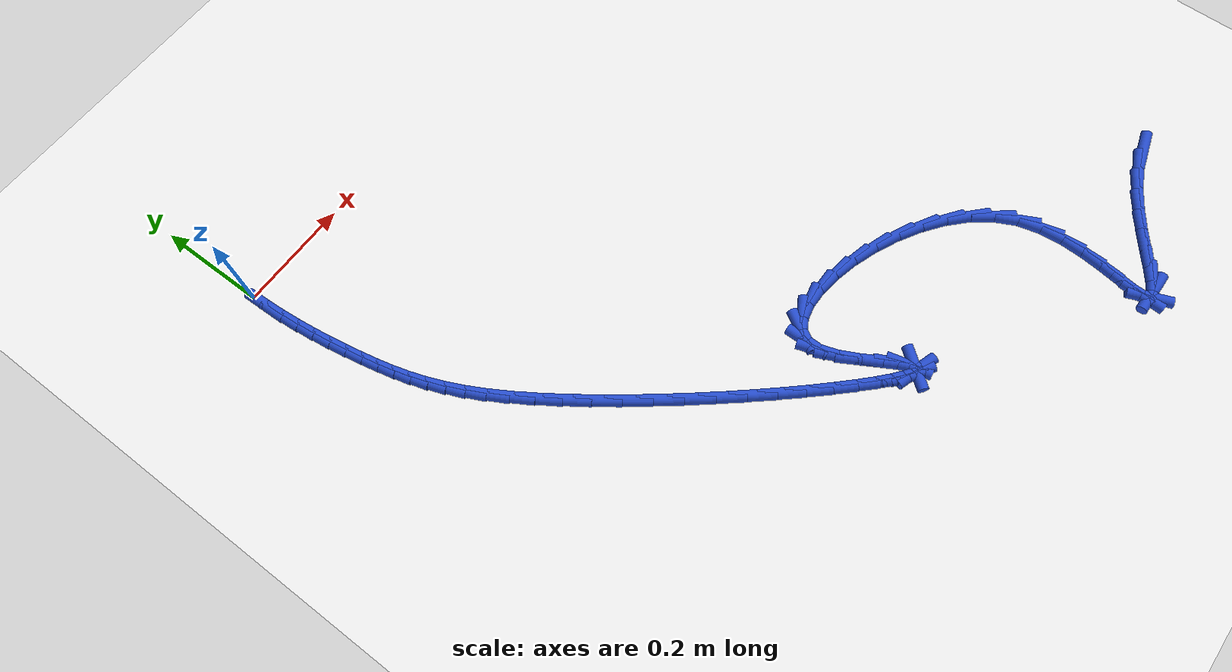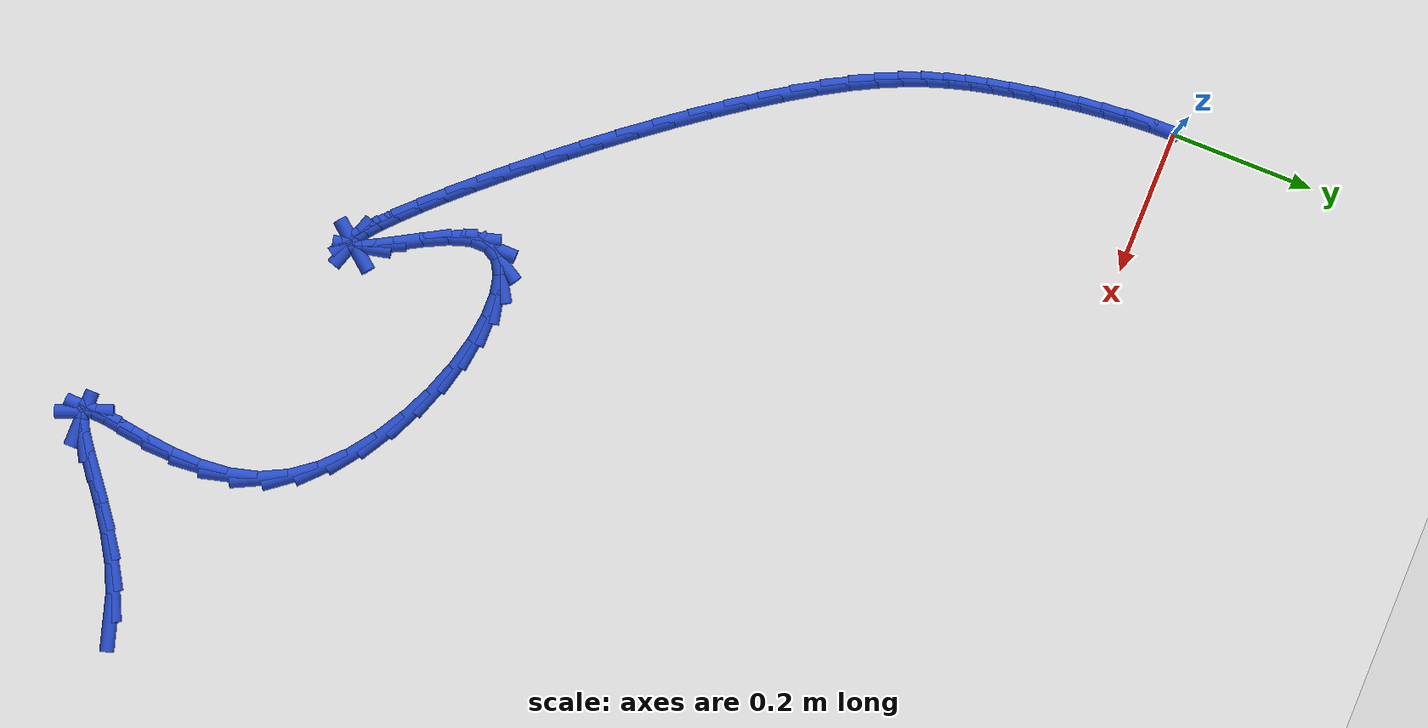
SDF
<sdf version="1.6">
 <world name="default">
  <model name="ground_plane">
   <static>1</static>
   <link name="link">
    <collision name="collision">
     <geometry><plane><normal>0 0 1</normal><size>100 100</size></plane></geometry>
     <surface><friction><ode><mu>100</mu><mu2>50</mu2></ode></friction></surface>
    </collision>
    <visual name="visual">
     <cast_shadows>0</cast_shadows>
     <geometry><plane><normal>0 0 1</normal><size>100 100</size></plane></geometry>
     <material>
      <script><uri>file://media/materials/scripts/gazebo.material</uri><name>Gazebo/WhiteGlow</name></script>
     </material>
    </visual>
   </link>
  </model>
  <model name="line">
   <link name="link_210">
    <pose>1.1494862340165375 -1.0933933401356342 0.01 0 1.57 0.2809379320940617</pose>
    <collision name="collision">
     <geometry><cylinder><radius>0.01</radius><length>0.08</length></cylinder></geometry>
    </collision>
    <visual name="visual">
     <material>
      <script><name>Gazebo/Blue</name><uri>file://media/materials/scripts/gazebo.material</uri></script>
     </material>
     <geometry><cylinder><radius>0.01</radius><length>0.08</length></cylinder></geometry>
    </visual>
   </link>
   <link name="link_211">
    <pose>1.110811473711103 -1.1045537190949128 0.01 0 1.57 0.4291257478042637</pose>
    <collision name="collision">
     <geometry><cylinder><radius>0.01</radius><length>0.08</length></cylinder></geometry>
    </collision>
    <visual name="visual">
     <material>
      <script><name>Gazebo/Blue</name><uri>file://media/materials/scripts/gazebo.material</uri></script>
     </material>
     <geometry><cylinder><radius>0.01</radius><length>0.08</length></cylinder></geometry>
    </visual>
   </link>
   <link name="link_212">
    <pose>1.0731702320283247 -1.1217769702623224 0.01 0 1.57 0.5325294775422573</pose>
    <collision name="collision">
     <geometry><cylinder><radius>0.01</radius><length>0.08</length></cylinder></geometry>
    </collision>
    <visual name="visual">
     <material>
      <script><name>Gazebo/Blue</name><uri>file://media/materials/scripts/gazebo.material</uri></script>
     </material>
     <geometry><cylinder><radius>0.01</radius><length>0.08</length></cylinder></geometry>
    </visual>
   </link>
   <link name="link_213">
    <pose>1.037273600185573 -1.142931570007715 0.01 0 1.57 0.6015515949822284</pose>
    <collision name="collision">
     <geometry><cylinder><radius>0.01</radius><length>0.08</length></cylinder></geometry>
    </collision>
    <visual name="visual">
     <material>
      <script><name>Gazebo/Blue</name><uri>file://media/materials/scripts/gazebo.material</uri></script>
     </material>
     <geometry><cylinder><radius>0.01</radius><length>0.08</length></cylinder></geometry>
    </visual>
   </link>
   <link name="link_214">
    <pose>1.0038326694002186 -1.1658859947009428 0.01 0 1.57 0.641746754187767</pose>
    <collision name="collision">
     <geometry><cylinder><radius>0.01</radius><length>0.08</length></cylinder></geometry>
    </collision>
    <visual name="visual">
     <material>
      <script><name>Gazebo/Blue</name><uri>file://media/materials/scripts/gazebo.material</uri></script>
     </material>
     <geometry><cylinder><radius>0.01</radius><length>0.08</length></cylinder></geometry>
    </visual>
   </link>
   <link name="link_215">
    <pose>0.973558530889632 -1.1885087207118576 0.01 0 1.57 0.6522279673479754</pose>
    <collision name="collision">
     <geometry><cylinder><radius>0.01</radius><length>0.08</length></cylinder></geometry>
    </collision>
    <visual name="visual">
     <material>
      <script><name>Gazebo/Blue</name><uri>file://media/materials/scripts/gazebo.material</uri></script>
     </material>
     <geometry><cylinder><radius>0.01</radius><length>0.08</length></cylinder></geometry>
    </visual>
   </link>
   <link name="link_216">
    <pose>0.9471622758711844 -1.2086682244103122 0.01 0 1.57 0.6198889378107529</pose>
    <collision name="collision">
     <geometry><cylinder><radius>0.01</radius><length>0.08</length></cylinder></geometry>
    </collision>
    <visual name="visual">
     <material>
      <script><name>Gazebo/Blue</name><uri>file://media/materials/scripts/gazebo.material</uri></script>
     </material>
     <geometry><cylinder><radius>0.01</radius><length>0.08</length></cylinder></geometry>
    </visual>
   </link>
   <link name="link_217">
    <pose>0.9253549955622463 -1.2242329821661593 0.01 0 1.57 0.49158968853066776</pose>
    <collision name="collision">
     <geometry><cylinder><radius>0.01</radius><length>0.08</length></cylinder></geometry>
    </collision>
    <visual name="visual">
     <material>
      <script><name>Gazebo/Blue</name><uri>file://media/materials/scripts/gazebo.material</uri></script>
     </material>
     <geometry><cylinder><radius>0.01</radius><length>0.08</length></cylinder></geometry>
    </visual>
   </link>
   <link name="link_218">
    <pose>0.9088477811801893 -1.2330714703492496 0.01 0 1.57 -0.0018392618873301692</pose>
    <collision name="collision">
     <geometry><cylinder><radius>0.01</radius><length>0.08</length></cylinder></geometry>
    </collision>
    <visual name="visual">
     <material>
      <script><name>Gazebo/Blue</name><uri>file://media/materials/scripts/gazebo.material</uri></script>
     </material>
     <geometry><cylinder><radius>0.01</radius><length>0.08</length></cylinder></geometry>
    </visual>
   </link>
   <link name="link_219">
    <pose>0.8983517239423833 -1.233052165329436 0.01 0 1.57 -1.1968593507704806</pose>
    <collision name="collision">
     <geometry><cylinder><radius>0.01</radius><length>0.08</length></cylinder></geometry>
    </collision>
    <visual name="visual">
     <material>
      <script><name>Gazebo/Blue</name><uri>file://media/materials/scripts/gazebo.material</uri></script>
     </material>
     <geometry><cylinder><radius>0.01</radius><length>0.08</length></cylinder></geometry>
    </visual>
   </link>
   <link name="link_220">
    <pose>0.8942302205095395 -1.2225488264524713 0.01 0 1.57 1.5283111142540429</pose>
    <collision name="collision">
     <geometry><cylinder><radius>0.01</radius><length>0.08</length></cylinder></geometry>
    </collision>
    <visual name="visual">
     <material>
      <script><name>Gazebo/Blue</name><uri>file://media/materials/scripts/gazebo.material</uri></script>
     </material>
     <geometry><cylinder><radius>0.01</radius><length>0.08</length></cylinder></geometry>
    </visual>
   </link>
   <link name="link_221">
    <pose>0.8950825595442187 -1.2024988820144589 0.01 0 1.57 1.4328060008294985</pose>
    <collision name="collision">
     <geometry><cylinder><radius>0.01</radius><length>0.08</length></cylinder></geometry>
    </collision>
    <visual name="visual">
     <material>
      <script><name>Gazebo/Blue</name><uri>file://media/materials/scripts/gazebo.material</uri></script>
     </material>
     <geometry><cylinder><radius>0.01</radius><length>0.08</length></cylinder></geometry>
    </visual>
   </link>
   <link name="link_222">
    <pose>0.8989498942366961 -1.174650864043183 0.01 0 1.57 1.4265640157900283</pose>
    <collision name="collision">
     <geometry><cylinder><radius>0.01</radius><length>0.08</length></cylinder></geometry>
    </collision>
    <visual name="visual">
     <material>
      <script><name>Gazebo/Blue</name><uri>file://media/materials/scripts/gazebo.material</uri></script>
     </material>
     <geometry><cylinder><radius>0.01</radius><length>0.08</length></cylinder></geometry>
    </visual>
   </link>
   <link name="link_223">
    <pose>0.9038731585587215 -1.1407536231431412 0.01 0 1.57 1.4659368260509016</pose>
    <collision name="collision">
     <geometry><cylinder><radius>0.01</radius><length>0.08</length></cylinder></geometry>
    </collision>
    <visual name="visual">
     <material>
      <script><name>Gazebo/Blue</name><uri>file://media/materials/scripts/gazebo.material</uri></script>
     </material>
     <geometry><cylinder><radius>0.01</radius><length>0.08</length></cylinder></geometry>
    </visual>
   </link>
   <link name="link_224">
    <pose>0.9078932864820439 -1.1025560099188316 0.01 0 1.57 1.542388018572001</pose>
    <collision name="collision">
     <geometry><cylinder><radius>0.01</radius><length>0.08</length></cylinder></geometry>
    </collision>
    <visual name="visual">
     <material>
      <script><name>Gazebo/Blue</name><uri>file://media/materials/scripts/gazebo.material</uri></script>
     </material>
     <geometry><cylinder><radius>0.01</radius><length>0.08</length></cylinder></geometry>
    </visual>
   </link>
   <link name="link_225">
    <pose>0.9090512119784125 -1.0618068749747522 0.01 0 1.57 -1.4828604247157378</pose>
    <collision name="collision">
     <geometry><cylinder><radius>0.01</radius><length>0.08</length></cylinder></geometry>
    </collision>
    <visual name="visual">
     <material>
      <script><name>Gazebo/Blue</name><uri>file://media/materials/scripts/gazebo.material</uri></script>
     </material>
     <geometry><cylinder><radius>0.01</radius><length>0.08</length></cylinder></geometry>
    </visual>
   </link>
   <link name="link_226">
    <pose>0.9053878690195769 -1.0202550689153997 0.01 0 1.57 -1.3190548292560513</pose>
    <collision name="collision">
     <geometry><cylinder><radius>0.01</radius><length>0.08</length></cylinder></geometry>
    </collision>
    <visual name="visual">
     <material>
      <script><name>Gazebo/Blue</name><uri>file://media/materials/scripts/gazebo.material</uri></script>
     </material>
     <geometry><cylinder><radius>0.01</radius><length>0.08</length></cylinder></geometry>
    </visual>
   </link>
   <link name="link_227">
    <pose>0.8949441915772861 -0.9796494423452747 0.01 0 1.57 -1.112562497556635</pose>
    <collision name="collision">
     <geometry><cylinder><radius>0.01</radius><length>0.08</length></cylinder></geometry>
    </collision>
    <visual name="visual">
     <material>
      <script><name>Gazebo/Blue</name><uri>file://media/materials/scripts/gazebo.material</uri></script>
     </material>
     <geometry><cylinder><radius>0.01</radius><length>0.08</length></cylinder></geometry>
    </visual>
   </link>
   <link name="link_228">
    <pose>0.8761610291073848 -0.9415691073853841 0.01 0 1.57 -0.9234850543735387</pose>
    <collision name="collision">
     <geometry><cylinder><radius>0.01</radius><length>0.08</length></cylinder></geometry>
    </collision>
    <visual name="visual">
     <material>
      <script><name>Gazebo/Blue</name><uri>file://media/materials/scripts/gazebo.material</uri></script>
     </material>
     <geometry><cylinder><radius>0.01</radius><length>0.08</length></cylinder></geometry>
    </visual>
   </link>
   <link name="link_229">
    <pose>0.8497482035887983 -0.9066301427897814 0.01 0 1.57 -0.7695891552248323</pose>
    <collision name="collision">
     <geometry><cylinder><radius>0.01</radius><length>0.08</length></cylinder></geometry>
    </collision>
    <visual name="visual">
     <material>
      <script><name>Gazebo/Blue</name><uri>file://media/materials/scripts/gazebo.material</uri></script>
     </material>
     <geometry><cylinder><radius>0.01</radius><length>0.08</length></cylinder></geometry>
    </visual>
   </link>
   <link name="link_230">
    <pose>0.8172147542033753 -0.8751094108495462 0.01 0 1.57 -0.6429479798110487</pose>
    <collision name="collision">
     <geometry><cylinder><radius>0.01</radius><length>0.08</length></cylinder></geometry>
    </collision>
    <visual name="visual">
     <material>
      <script><name>Gazebo/Blue</name><uri>file://media/materials/scripts/gazebo.material</uri></script>
     </material>
     <geometry><cylinder><radius>0.01</radius><length>0.08</length></cylinder></geometry>
    </visual>
   </link>
   <link name="link_231">
    <pose>0.7800706137731506 -0.8472833945627937 0.01 0 1.57 -0.5350652003773593</pose>
    <collision name="collision">
     <geometry><cylinder><radius>0.01</radius><length>0.08</length></cylinder></geometry>
    </collision>
    <visual name="visual">
     <material>
      <script><name>Gazebo/Blue</name><uri>file://media/materials/scripts/gazebo.material</uri></script>
     </material>
     <geometry><cylinder><radius>0.01</radius><length>0.08</length></cylinder></geometry>
    </visual>
   </link>
   <link name="link_232">
    <pose>0.7398257151201576 -0.8234285769276388 0.01 0 1.57 -0.4382707183796805</pose>
    <collision name="collision">
     <geometry><cylinder><radius>0.01</radius><length>0.08</length></cylinder></geometry>
    </collision>
    <visual name="visual">
     <material>
      <script><name>Gazebo/Blue</name><uri>file://media/materials/scripts/gazebo.material</uri></script>
     </material>
     <geometry><cylinder><radius>0.01</radius><length>0.08</length></cylinder></geometry>
    </visual>
   </link>
   <link name="link_233">
    <pose>0.6979899910664304 -0.8038214409421965 0.01 0 1.57 -0.34540750940360165</pose>
    <collision name="collision">
     <geometry><cylinder><radius>0.01</radius><length>0.08</length></cylinder></geometry>
    </collision>
    <visual name="visual">
     <material>
      <script><name>Gazebo/Blue</name><uri>file://media/materials/scripts/gazebo.material</uri></script>
     </material>
     <geometry><cylinder><radius>0.01</radius><length>0.08</length></cylinder></geometry>
    </visual>
   </link>
   <link name="link_234">
    <pose>0.6560733744340022 -0.7887384696045815 0.01 0 1.57 -0.24870452744731175</pose>
    <collision name="collision">
     <geometry><cylinder><radius>0.01</radius><length>0.08</length></cylinder></geometry>
    </collision>
    <visual name="visual">
     <material>
      <script><name>Gazebo/Blue</name><uri>file://media/materials/scripts/gazebo.material</uri></script>
     </material>
     <geometry><cylinder><radius>0.01</radius><length>0.08</length></cylinder></geometry>
    </visual>
   </link>
   <link name="link_235">
    <pose>0.6155857980449094 -0.7784561459129099 0.01 0 1.57 -0.1377475876141972</pose>
    <collision name="collision">
     <geometry><cylinder><radius>0.01</radius><length>0.08</length></cylinder></geometry>
    </collision>
    <visual name="visual">
     <material>
      <script><name>Gazebo/Blue</name><uri>file://media/materials/scripts/gazebo.material</uri></script>
     </material>
     <geometry><cylinder><radius>0.01</radius><length>0.08</length></cylinder></geometry>
    </visual>
   </link>
   <link name="link_236">
    <pose>0.5780371947211844 -0.7732509528652958 0.01 0 1.57 0.004484016813380185</pose>
    <collision name="collision">
     <geometry><cylinder><radius>0.01</radius><length>0.08</length></cylinder></geometry>
    </collision>
    <visual name="visual">
     <material>
      <script><name>Gazebo/Blue</name><uri>file://media/materials/scripts/gazebo.material</uri></script>
     </material>
     <geometry><cylinder><radius>0.01</radius><length>0.08</length></cylinder></geometry>
    </visual>
   </link>
   <link name="link_237">
    <pose>0.5449374972848616 -0.7733993734598543 0.01 0 1.57 0.20977613057031325</pose>
    <collision name="collision">
     <geometry><cylinder><radius>0.01</radius><length>0.08</length></cylinder></geometry>
    </collision>
    <visual name="visual">
     <material>
      <script><name>Gazebo/Blue</name><uri>file://media/materials/scripts/gazebo.material</uri></script>
     </material>
     <geometry><cylinder><radius>0.01</radius><length>0.08</length></cylinder></geometry>
    </visual>
   </link>
   <link name="link_238">
    <pose>0.5177966385579751 -0.7791778906947004 0.01 0 1.57 0.5359914363998503</pose>
    <collision name="collision">
     <geometry><cylinder><radius>0.01</radius><length>0.08</length></cylinder></geometry>
    </collision>
    <visual name="visual">
     <material>
      <script><name>Gazebo/Blue</name><uri>file://media/materials/scripts/gazebo.material</uri></script>
     </material>
     <geometry><cylinder><radius>0.01</radius><length>0.08</length></cylinder></geometry>
    </visual>
   </link>
   <link name="link_239">
    <pose>0.4981245513625585 -0.790862987567949 0.01 0 1.57 1.031509779818836</pose>
    <collision name="collision">
     <geometry><cylinder><radius>0.01</radius><length>0.08</length></cylinder></geometry>
    </collision>
    <visual name="visual">
     <material>
      <script><name>Gazebo/Blue</name><uri>file://media/materials/scripts/gazebo.material</uri></script>
     </material>
     <geometry><cylinder><radius>0.01</radius><length>0.08</length></cylinder></geometry>
    </visual>
   </link>
   <link name="link_240">
    <pose>0.48743116852064616 -0.8087311470777155 0.01 0 1.57 1.5608912304641747</pose>
    <collision name="collision">
     <geometry><cylinder><radius>0.01</radius><length>0.08</length></cylinder></geometry>
    </collision>
    <visual name="visual">
     <material>
      <script><name>Gazebo/Blue</name><uri>file://media/materials/scripts/gazebo.material</uri></script>
     </material>
     <geometry><cylinder><radius>0.01</radius><length>0.08</length></cylinder></geometry>
    </visual>
   </link>
   <link name="link_241">
    <pose>0.4871904228684169 -0.8330355829841961 0.01 0 1.57 -1.258981547882873</pose>
    <collision name="collision">
     <geometry><cylinder><radius>0.01</radius><length>0.08</length></cylinder></geometry>
    </collision>
    <visual name="visual">
     <material>
      <script><name>Gazebo/Blue</name><uri>file://media/materials/scripts/gazebo.material</uri></script>
     </material>
     <geometry><cylinder><radius>0.01</radius><length>0.08</length></cylinder></geometry>
    </visual>
   </link>
   <link name="link_242">
    <pose>0.4967344562599492 -0.8626451239499139 0.01 0 1.57 -1.1191166211258998</pose>
    <collision name="collision">
     <geometry><cylinder><radius>0.01</radius><length>0.08</length></cylinder></geometry>
    </collision>
    <visual name="visual">
     <material>
      <script><name>Gazebo/Blue</name><uri>file://media/materials/scripts/gazebo.material</uri></script>
     </material>
     <geometry><cylinder><radius>0.01</radius><length>0.08</length></cylinder></geometry>
    </visual>
   </link>
   <link name="link_243">
    <pose>0.5120860621117539 -0.8942895417927857 0.01 0 1.57 -1.0610125460090953</pose>
    <collision name="collision">
     <geometry><cylinder><radius>0.01</radius><length>0.08</length></cylinder></geometry>
    </collision>
    <visual name="visual">
     <material>
      <script><name>Gazebo/Blue</name><uri>file://media/materials/scripts/gazebo.material</uri></script>
     </material>
     <geometry><cylinder><radius>0.01</radius><length>0.08</length></cylinder></geometry>
    </visual>
   </link>
   <link name="link_244">
    <pose>0.5289845739727254 -0.924515388950407 0.01 0 1.57 -1.0606864064150714</pose>
    <collision name="collision">
     <geometry><cylinder><radius>0.01</radius><length>0.08</length></cylinder></geometry>
    </collision>
    <visual name="visual">
     <material>
      <script><name>Gazebo/Blue</name><uri>file://media/materials/scripts/gazebo.material</uri></script>
     </material>
     <geometry><cylinder><radius>0.01</radius><length>0.08</length></cylinder></geometry>
    </visual>
   </link>
   <link name="link_245">
    <pose>0.5431708111519625 -0.9498704562877315 0.01 0 1.57 -1.136639280103974</pose>
    <collision name="collision">
     <geometry><cylinder><radius>0.01</radius><length>0.08</length></cylinder></geometry>
    </collision>
    <visual name="visual">
     <material>
      <script><name>Gazebo/Blue</name><uri>file://media/materials/scripts/gazebo.material</uri></script>
     </material>
     <geometry><cylinder><radius>0.01</radius><length>0.08</length></cylinder></geometry>
    </visual>
   </link>
   <link name="link_246">
    <pose>0.5514977708873406 -0.9678295695770939 0.01 0 1.57 -1.3477527098430582</pose>
    <collision name="collision">
     <geometry><cylinder><radius>0.01</radius><length>0.08</length></cylinder></geometry>
    </collision>
    <visual name="visual">
     <material>
      <script><name>Gazebo/Blue</name><uri>file://media/materials/scripts/gazebo.material</uri></script>
     </material>
     <geometry><cylinder><radius>0.01</radius><length>0.08</length></cylinder></geometry>
    </visual>
   </link>
   <link name="link_247">
    <pose>0.5539043428395964 -0.9784397419381923 0.01 0 1.57 0.8890251087593928</pose>
    <collision name="collision">
     <geometry><cylinder><radius>0.01</radius><length>0.08</length></cylinder></geometry>
    </collision>
    <visual name="visual">
     <material>
      <script><name>Gazebo/Blue</name><uri>file://media/materials/scripts/gazebo.material</uri></script>
     </material>
     <geometry><cylinder><radius>0.01</radius><length>0.08</length></cylinder></geometry>
    </visual>
   </link>
   <link name="link_248">
    <pose>0.5508602706490661 -0.982190469799445 0.01 0 1.57 -0.31548289107047783</pose>
    <collision name="collision">
     <geometry><cylinder><radius>0.01</radius><length>0.08</length></cylinder></geometry>
    </collision>
    <visual name="visual">
     <material>
      <script><name>Gazebo/Blue</name><uri>file://media/materials/scripts/gazebo.material</uri></script>
     </material>
     <geometry><cylinder><radius>0.01</radius><length>0.08</length></cylinder></geometry>
    </visual>
   </link>
   <link name="link_249">
    <pose>0.5428352979560854 -0.9795712495892707 0.01 0 1.57 -0.5958173899034015</pose>
    <collision name="collision">
     <geometry><cylinder><radius>0.01</radius><length>0.08</length></cylinder></geometry>
    </collision>
    <visual name="visual">
     <material>
      <script><name>Gazebo/Blue</name><uri>file://media/materials/scripts/gazebo.material</uri></script>
     </material>
     <geometry><cylinder><radius>0.01</radius><length>0.08</length></cylinder></geometry>
    </visual>
   </link>
   <link name="link_250">
    <pose>0.5302991684009903 -0.9710715777360869 0.01 0 1.57 -0.6974380853106787</pose>
    <collision name="collision">
     <geometry><cylinder><radius>0.01</radius><length>0.08</length></cylinder></geometry>
    </collision>
    <visual name="visual">
     <material>
      <script><name>Gazebo/Blue</name><uri>file://media/materials/scripts/gazebo.material</uri></script>
     </material>
     <geometry><cylinder><radius>0.01</radius><length>0.08</length></cylinder></geometry>
    </visual>
   </link>
   <link name="link_251">
    <pose>0.5137216256241168 -0.957180950668312 0.01 0 1.57 -0.7505616908491362</pose>
    <collision name="collision">
     <geometry><cylinder><radius>0.01</radius><length>0.08</length></cylinder></geometry>
    </collision>
    <visual name="visual">
     <material>
      <script><name>Gazebo/Blue</name><uri>file://media/materials/scripts/gazebo.material</uri></script>
     </material>
     <geometry><cylinder><radius>0.01</radius><length>0.08</length></cylinder></geometry>
    </visual>
   </link>
   <link name="link_252">
    <pose>0.4935724132658002 -0.9383888648143637 0.01 0 1.57 -0.7843844967839149</pose>
    <collision name="collision">
     <geometry><cylinder><radius>0.01</radius><length>0.08</length></cylinder></geometry>
    </collision>
    <visual name="visual">
     <material>
      <script><name>Gazebo/Blue</name><uri>file://media/materials/scripts/gazebo.material</uri></script>
     </material>
     <geometry><cylinder><radius>0.01</radius><length>0.08</length></cylinder></geometry>
    </visual>
   </link>
   <link name="link_253">
    <pose>0.47032127496637743 -0.9151848166026614 0.01 0 1.57 -0.8088459953381504</pose>
    <collision name="collision">
     <geometry><cylinder><radius>0.01</radius><length>0.08</length></cylinder></geometry>
    </collision>
    <visual name="visual">
     <material>
      <script><name>Gazebo/Blue</name><uri>file://media/materials/scripts/gazebo.material</uri></script>
     </material>
     <geometry><cylinder><radius>0.01</radius><length>0.08</length></cylinder></geometry>
    </visual>
   </link>
   <link name="link_254">
    <pose>0.444437954366184 -0.8880583024616225 0.01 0 1.57 -0.8282643713032247</pose>
    <collision name="collision">
     <geometry><cylinder><radius>0.01</radius><length>0.08</length></cylinder></geometry>
    </collision>
    <visual name="visual">
     <material>
      <script><name>Gazebo/Blue</name><uri>file://media/materials/scripts/gazebo.material</uri></script>
     </material>
     <geometry><cylinder><radius>0.01</radius><length>0.08</length></cylinder></geometry>
    </visual>
   </link>
   <link name="link_255">
    <pose>0.41639219510555575 -0.8574988188196659 0.01 0 1.57 -0.8448539141047304</pose>
    <collision name="collision">
     <geometry><cylinder><radius>0.01</radius><length>0.08</length></cylinder></geometry>
    </collision>
    <visual name="visual">
     <material>
      <script><name>Gazebo/Blue</name><uri>file://media/materials/scripts/gazebo.material</uri></script>
     </material>
     <geometry><cylinder><radius>0.01</radius><length>0.08</length></cylinder></geometry>
    </visual>
   </link>
   <link name="link_256">
    <pose>0.3866537408248287 -0.8239958621052091 0.01 0 1.57 -0.8599110548691697</pose>
    <collision name="collision">
     <geometry><cylinder><radius>0.01</radius><length>0.08</length></cylinder></geometry>
    </collision>
    <visual name="visual">
     <material>
      <script><name>Gazebo/Blue</name><uri>file://media/materials/scripts/gazebo.material</uri></script>
     </material>
     <geometry><cylinder><radius>0.01</radius><length>0.08</length></cylinder></geometry>
    </visual>
   </link>
   <link name="link_257">
    <pose>0.35569233516433874 -0.7880389287466708 0.01 0 1.57 -0.8742952712820846</pose>
    <collision name="collision">
     <geometry><cylinder><radius>0.01</radius><length>0.08</length></cylinder></geometry>
    </collision>
    <visual name="visual">
     <material>
      <script><name>Gazebo/Blue</name><uri>file://media/materials/scripts/gazebo.material</uri></script>
     </material>
     <geometry><cylinder><radius>0.01</radius><length>0.08</length></cylinder></geometry>
    </visual>
   </link>
   <link name="link_258">
    <pose>0.32397772176442174 -0.7501175151724689 0.01 0 1.57 -0.8886555557873517</pose>
    <collision name="collision">
     <geometry><cylinder><radius>0.01</radius><length>0.08</length></cylinder></geometry>
    </collision>
    <visual name="visual">
     <material>
      <script><name>Gazebo/Blue</name><uri>file://media/materials/scripts/gazebo.material</uri></script>
     </material>
     <geometry><cylinder><radius>0.01</radius><length>0.08</length></cylinder></geometry>
    </visual>
   </link>
   <link name="link_259">
    <pose>0.29197964426541345 -0.7107211178110215 0.01 0 1.57 -0.9035548626237918</pose>
    <collision name="collision">
     <geometry><cylinder><radius>0.01</radius><length>0.08</length></cylinder></geometry>
    </collision>
    <visual name="visual">
     <material>
      <script><name>Gazebo/Blue</name><uri>file://media/materials/scripts/gazebo.material</uri></script>
     </material>
     <geometry><cylinder><radius>0.01</radius><length>0.08</length></cylinder></geometry>
    </visual>
   </link>
   <link name="link_260">
    <pose>0.2601678463076502 -0.6703392330907474 0.01 0 1.57 -0.9195535980733078</pose>
    <collision name="collision">
     <geometry><cylinder><radius>0.01</radius><length>0.08</length></cylinder></geometry>
    </collision>
    <visual name="visual">
     <material>
      <script><name>Gazebo/Blue</name><uri>file://media/materials/scripts/gazebo.material</uri></script>
     </material>
     <geometry><cylinder><radius>0.01</radius><length>0.08</length></cylinder></geometry>
    </visual>
   </link>
   <link name="link_261">
    <pose>0.2290120715314666 -0.6294613574400629 0.01 0 1.57 -0.9372822831978407</pose>
    <collision name="collision">
     <geometry><cylinder><radius>0.01</radius><length>0.08</length></cylinder></geometry>
    </collision>
    <visual name="visual">
     <material>
      <script><name>Gazebo/Blue</name><uri>file://media/materials/scripts/gazebo.material</uri></script>
     </material>
     <geometry><cylinder><radius>0.01</radius><length>0.08</length></cylinder></geometry>
    </visual>
   </link>
   <link name="link_262">
    <pose>0.1989820635772007 -0.5885769872873894 0.01 0 1.57 -0.9575243365880537</pose>
    <collision name="collision">
     <geometry><cylinder><radius>0.01</radius><length>0.08</length></cylinder></geometry>
    </collision>
    <visual name="visual">
     <material>
      <script><name>Gazebo/Blue</name><uri>file://media/materials/scripts/gazebo.material</uri></script>
     </material>
     <geometry><cylinder><radius>0.01</radius><length>0.08</length></cylinder></geometry>
    </visual>
   </link>
   <link name="link_263">
    <pose>0.1705475660851873 -0.5481756190611432 0.01 0 1.57 -0.9813320065010631</pose>
    <collision name="collision">
     <geometry><cylinder><radius>0.01</radius><length>0.08</length></cylinder></geometry>
    </collision>
    <visual name="visual">
     <material>
      <script><name>Gazebo/Blue</name><uri>file://media/materials/scripts/gazebo.material</uri></script>
     </material>
     <geometry><cylinder><radius>0.01</radius><length>0.08</length></cylinder></geometry>
    </visual>
   </link>
   <link name="link_264">
    <pose>0.14417832269576247 -0.5087467491897429 0.01 0 1.57 -1.010211728258906</pose>
    <collision name="collision">
     <geometry><cylinder><radius>0.01</radius><length>0.08</length></cylinder></geometry>
    </collision>
    <visual name="visual">
     <material>
      <script><name>Gazebo/Blue</name><uri>file://media/materials/scripts/gazebo.material</uri></script>
     </material>
     <geometry><cylinder><radius>0.01</radius><length>0.08</length></cylinder></geometry>
    </visual>
   </link>
   <link name="link_265">
    <pose>0.12034407704926203 -0.47077987410160665 0.01 0 1.57 -1.0464479320640983</pose>
    <collision name="collision">
     <geometry><cylinder><radius>0.01</radius><length>0.08</length></cylinder></geometry>
    </collision>
    <visual name="visual">
     <material>
      <script><name>Gazebo/Blue</name><uri>file://media/materials/scripts/gazebo.material</uri></script>
     </material>
     <geometry><cylinder><radius>0.01</radius><length>0.08</length></cylinder></geometry>
    </visual>
   </link>
   <link name="link_266">
    <pose>0.09951457278602191 -0.4347644902251526 0.01 0 1.57 -1.0922138004993989</pose>
    <collision name="collision">
     <geometry><cylinder><radius>0.01</radius><length>0.08</length></cylinder></geometry>
    </collision>
    <visual name="visual">
     <material>
      <script><name>Gazebo/Blue</name><uri>file://media/materials/scripts/gazebo.material</uri></script>
     </material>
     <geometry><cylinder><radius>0.01</radius><length>0.08</length></cylinder></geometry>
    </visual>
   </link>
   <link name="link_267">
    <pose>0.08201720477082941 -0.4010385582851005 0.01 0 1.57 -1.143668296526414</pose>
    <collision name="collision">
     <geometry><cylinder><radius>0.01</radius><length>0.08</length></cylinder></geometry>
    </collision>
    <visual name="visual">
     <material>
      <script><name>Gazebo/Blue</name><uri>file://media/materials/scripts/gazebo.material</uri></script>
     </material>
     <geometry><cylinder><radius>0.01</radius><length>0.08</length></cylinder></geometry>
    </visual>
   </link>
   <link name="link_268">
    <pose>0.06756510054253428 -0.3692861279968462 0.01 0 1.57 -1.197404559352192</pose>
    <collision name="collision">
     <geometry><cylinder><radius>0.01</radius><length>0.08</length></cylinder></geometry>
    </collision>
    <visual name="visual">
     <material>
      <script><name>Gazebo/Blue</name><uri>file://media/materials/scripts/gazebo.material</uri></script>
     </material>
     <geometry><cylinder><radius>0.01</radius><length>0.08</length></cylinder></geometry>
    </visual>
   </link>
   <link name="link_269">
    <pose>0.05570573258748883 -0.33901490295089154 0.01 0 1.57 -1.2503252509392893</pose>
    <collision name="collision">
     <geometry><cylinder><radius>0.01</radius><length>0.08</length></cylinder></geometry>
    </collision>
    <visual name="visual">
     <material>
      <script><name>Gazebo/Blue</name><uri>file://media/materials/scripts/gazebo.material</uri></script>
     </material>
     <geometry><cylinder><radius>0.01</radius><length>0.08</length></cylinder></geometry>
    </visual>
   </link>
   <link name="link_270">
    <pose>0.04598657090991035 -0.30973258409541043 0.01 0 1.57 -1.2987064028543722</pose>
    <collision name="collision">
     <geometry><cylinder><radius>0.01</radius><length>0.08</length></cylinder></geometry>
    </collision>
    <visual name="visual">
     <material>
      <script><name>Gazebo/Blue</name><uri>file://media/materials/scripts/gazebo.material</uri></script>
     </material>
     <geometry><cylinder><radius>0.01</radius><length>0.08</length></cylinder></geometry>
    </visual>
   </link>
   <link name="link_271">
    <pose>0.03795508551401705 -0.28094687237857924 0.01 0 1.57 -1.3389076444456434</pose>
    <collision name="collision">
     <geometry><cylinder><radius>0.01</radius><length>0.08</length></cylinder></geometry>
    </collision>
    <visual name="visual">
     <material>
      <script><name>Gazebo/Blue</name><uri>file://media/materials/scripts/gazebo.material</uri></script>
     </material>
     <geometry><cylinder><radius>0.01</radius><length>0.08</length></cylinder></geometry>
    </visual>
   </link>
   <link name="link_272">
    <pose>0.031158746404026147 -0.25216546874857176 0.01 0 1.57 -1.368155239744976</pose>
    <collision name="collision">
     <geometry><cylinder><radius>0.01</radius><length>0.08</length></cylinder></geometry>
    </collision>
    <visual name="visual">
     <material>
      <script><name>Gazebo/Blue</name><uri>file://media/materials/scripts/gazebo.material</uri></script>
     </material>
     <geometry><cylinder><radius>0.01</radius><length>0.08</length></cylinder></geometry>
    </visual>
   </link>
   <link name="link_273">
    <pose>0.025145023584155213 -0.22289607415356266 0.01 0 1.57 -1.3874313136413026</pose>
    <collision name="collision">
     <geometry><cylinder><radius>0.01</radius><length>0.08</length></cylinder></geometry>
    </collision>
    <visual name="visual">
     <material>
      <script><name>Gazebo/Blue</name><uri>file://media/materials/scripts/gazebo.material</uri></script>
     </material>
     <geometry><cylinder><radius>0.01</radius><length>0.08</length></cylinder></geometry>
    </visual>
   </link>
   <link name="link_274">
    <pose>0.019554640525693733 -0.19275080582925572 0.01 0 1.57 -1.406390486061418</pose>
    <collision name="collision">
     <geometry><cylinder><radius>0.01</radius><length>0.08</length></cylinder></geometry>
    </collision>
    <visual name="visual">
     <material>
      <script><name>Gazebo/Blue</name><uri>file://media/materials/scripts/gazebo.material</uri></script>
     </material>
     <geometry><cylinder><radius>0.01</radius><length>0.08</length></cylinder></geometry>
    </visual>
   </link>
   <link name="link_275">
    <pose>0.014415749807277382 -0.16177558696345515 0.01 0 1.57 -1.4277319196029423</pose>
    <collision name="collision">
     <geometry><cylinder><radius>0.01</radius><length>0.08</length></cylinder></geometry>
    </collision>
    <visual name="visual">
     <material>
      <script><name>Gazebo/Blue</name><uri>file://media/materials/scripts/gazebo.material</uri></script>
     </material>
     <geometry><cylinder><radius>0.01</radius><length>0.08</length></cylinder></geometry>
    </visual>
   </link>
   <link name="link_276">
    <pose>0.009857103279565748 -0.13012898215926802 0.01 0 1.57 -1.4516580328175395</pose>
    <collision name="collision">
     <geometry><cylinder><radius>0.01</radius><length>0.08</length></cylinder></geometry>
    </collision>
    <visual name="visual">
     <material>
      <script><name>Gazebo/Blue</name><uri>file://media/materials/scripts/gazebo.material</uri></script>
     </material>
     <geometry><cylinder><radius>0.01</radius><length>0.08</length></cylinder></geometry>
    </visual>
   </link>
   <link name="link_277">
    <pose>0.006007452988770509 -0.09796955623876157 0.01 0 1.57 -1.478425035089367</pose>
    <collision name="collision">
     <geometry><cylinder><radius>0.01</radius><length>0.08</length></cylinder></geometry>
    </collision>
    <visual name="visual">
     <material>
      <script><name>Gazebo/Blue</name><uri>file://media/materials/scripts/gazebo.material</uri></script>
     </material>
     <geometry><cylinder><radius>0.01</radius><length>0.08</length></cylinder></geometry>
    </visual>
   </link>
   <link name="link_278">
    <pose>0.0029955509811033466 -0.0654558740240033 0.01 0 1.57 -1.5083450590215837</pose>
    <collision name="collision">
     <geometry><cylinder><radius>0.01</radius><length>0.08</length></cylinder></geometry>
    </collision>
    <visual name="visual">
     <material>
      <script><name>Gazebo/Blue</name><uri>file://media/materials/scripts/gazebo.material</uri></script>
     </material>
     <geometry><cylinder><radius>0.01</radius><length>0.08</length></cylinder></geometry>
    </visual>
   </link>
   <link name="link_279">
    <pose>0.0009501493027759024 -0.03274650033705959 0.01 0 1.57 -1.5417891721956327</pose>
    <collision name="collision">
     <geometry><cylinder><radius>0.01</radius><length>0.08</length></cylinder></geometry>
    </collision>
    <visual name="visual">
     <material>
      <script><name>Gazebo/Blue</name><uri>file://media/materials/scripts/gazebo.material</uri></script>
     </material>
     <geometry><cylinder><radius>0.01</radius><length>0.08</length></cylinder></geometry>
    </visual>
   </link>
  </model>
 </world>
</sdf>
